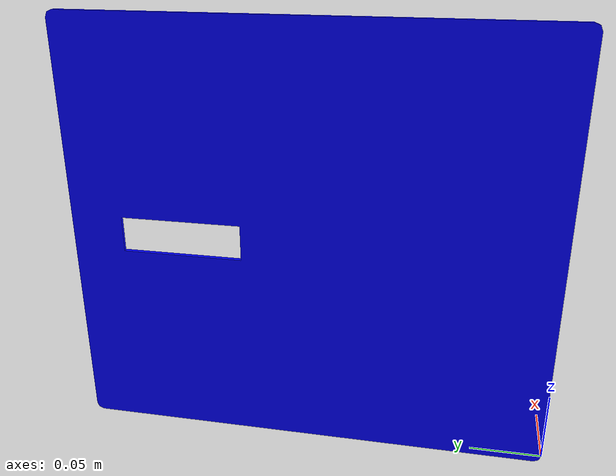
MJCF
<mujoco model="cabinet_door_2">
  <default>
    <default class="visual">
      <geom group="2" type="mesh" contype="0" conaffinity="0"/>
    </default>
    <default class="collision">
      <geom group="3" type="mesh"/>
    </default>
  </default>
  <asset>
    <material name="mtl_cabinet_door_2" specular="0.20000000000000004" shininess="1.0" rgba="0.00000000 0.00000000 1.00000000 1.0"/>
    <mesh file="cabinet_door_2.obj"/>
  </asset>
  <worldbody>
    <body name="cabinet_door_2">
      <geom material="mtl_cabinet_door_2" mesh="cabinet_door_2" class="visual"/>
      <geom mesh="cabinet_door_2" class="collision"/>
    </body>
  </worldbody>
</mujoco>
